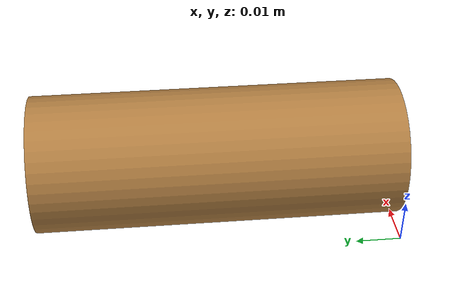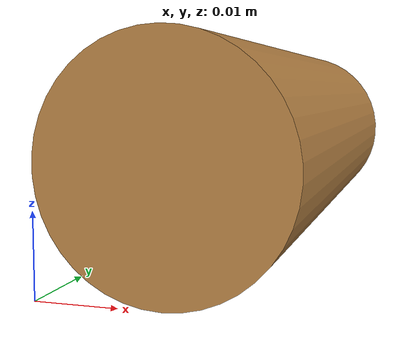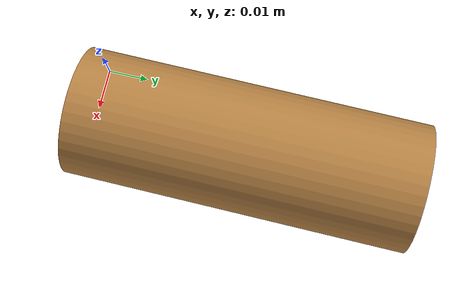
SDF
<?xml version="1.0" ?>
<sdf version="1.4">
	<model name='alloy_rod_0_03m'>
		<pose> 0 0 0 0 0 0 </pose>
		<link name="link">
			<inertial>
				<mass> 0.152681 </mass>
				<pose> 0.015 0.04 0.015 0 0 0 </pose>
				<inertia>
					<ixx> 0.000334 </ixx>
					<ixy> 0 </ixy>
					<ixz> 0 </ixz>
					<iyy> 0.000017 </iyy>
					<iyz> 0 </iyz>
					<izz> 0.000334 </izz>
				</inertia>
			</inertial>

			<collision name="collision">
				<geometry>
					<mesh>
						<uri> /home/kevin/research/gazebo/evaluation_platform/models/alloy_rod_0_03m/meshes/alloy_rod_0_03m.dae </uri>
						<scale> 1 1 1 </scale>
					</mesh>
				</geometry>
				<surface>
					<bounce>
						<restitution_coefficient> 0.1 </restitution_coefficient>
					</bounce>
					<friction>
						<ode>
							<mu> 0.61 </mu>
							<mu2> 0.61 </mu2>
						</ode>
					</friction>

				</surface>
			</collision>

			<visual name="visual">
				<material>
					<ambient> 0.71 0.506 0.2627 1 </ambient>
					<diffuse> 0.71 0.506 0.2627 1 </diffuse>
				</material>
				<geometry>
					<mesh>
						<uri> /home/kevin/research/gazebo/evaluation_platform/models/alloy_rod_0_03m/meshes/alloy_rod_0_03m.dae </uri>
						<scale> 1 1 1 </scale>
					</mesh>
				</geometry>
			</visual>

		</link>
	</model>
</sdf>
